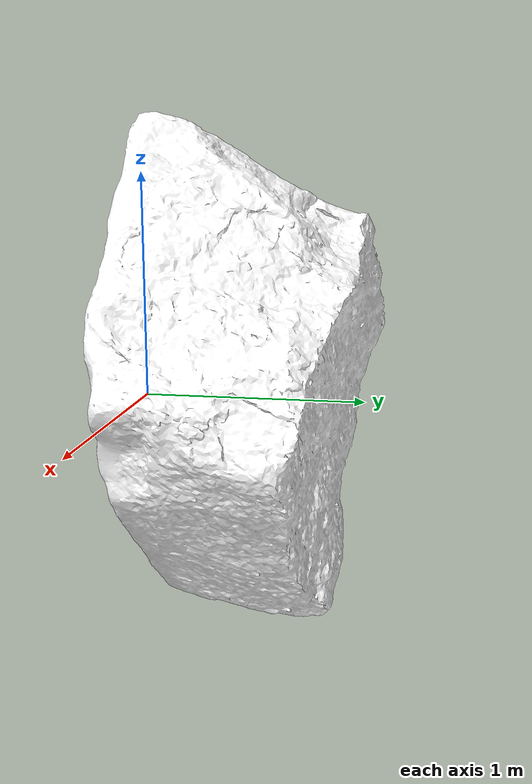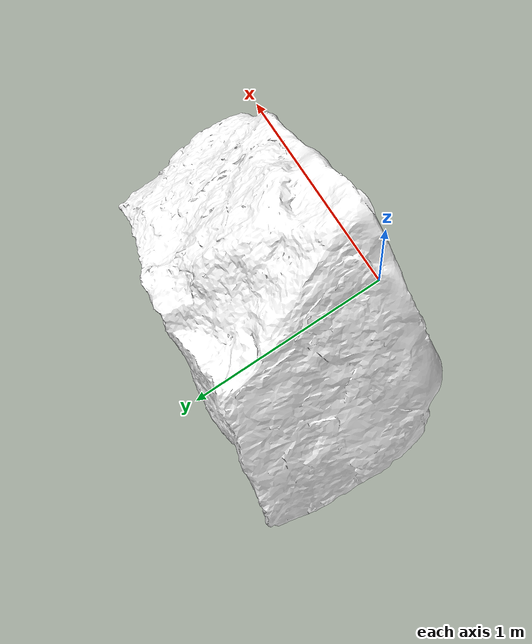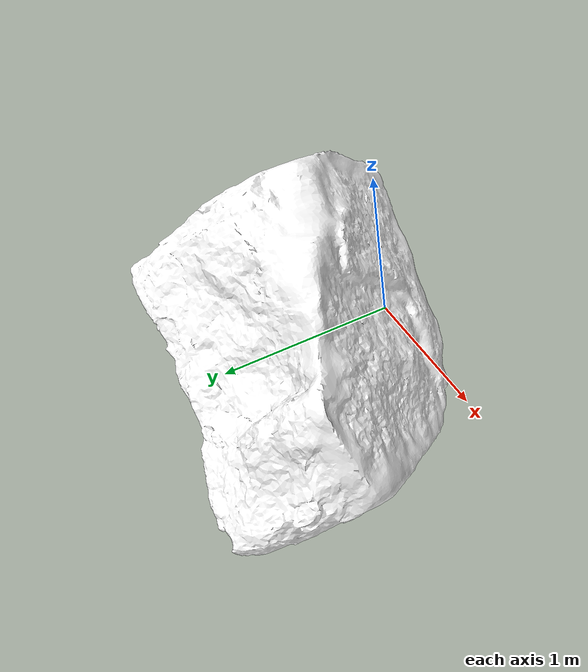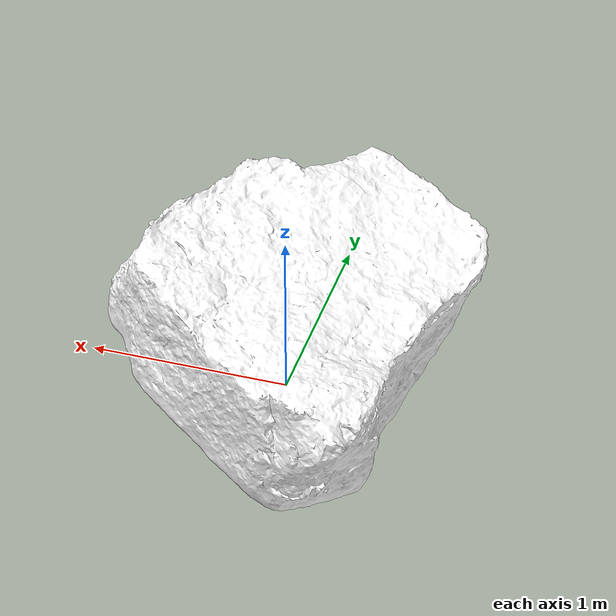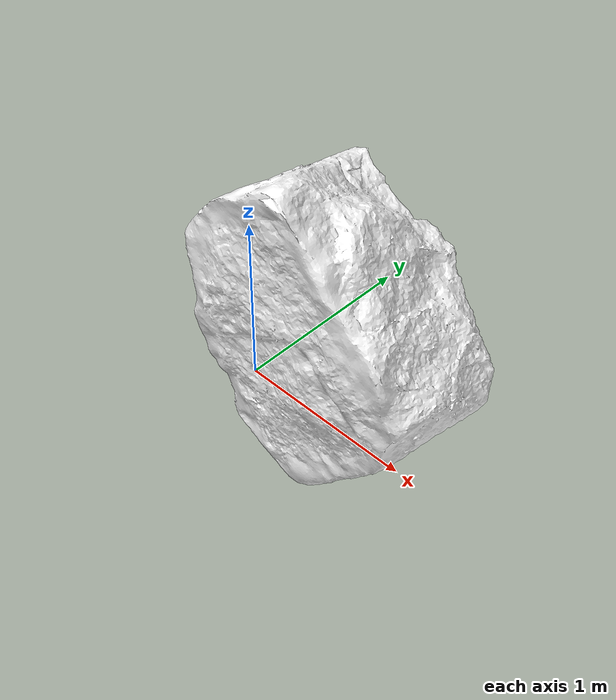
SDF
<?xml version="1.0" ?>
<sdf version="1.9">
  <model name="rock_1">
    <static>true</static>
    <link name="rock_link">

      <!-- Visual -->
      <visual name="visual">
        <geometry>
          <mesh>
            <uri>model://rock_1/meshes/rock_1.obj</uri>
          </mesh>
        </geometry>
        <material>
          <ambient>1 1 1 1</ambient>
          <diffuse>1 1 1 1</diffuse>
          <pbr>
            <metal>
              <albedo_map>model://rock_1/meshes/rock_1_diffuse.jpg</albedo_map>
            </metal>
          </pbr>
        </material>
      </visual>

      <!-- Collision -->
      <collision name="collision">
        <geometry>
          <mesh>
            <uri>model://rock_1/meshes/rock_1.obj</uri>
          </mesh>
        </geometry>
      </collision>

    </link>
  </model>
</sdf>
